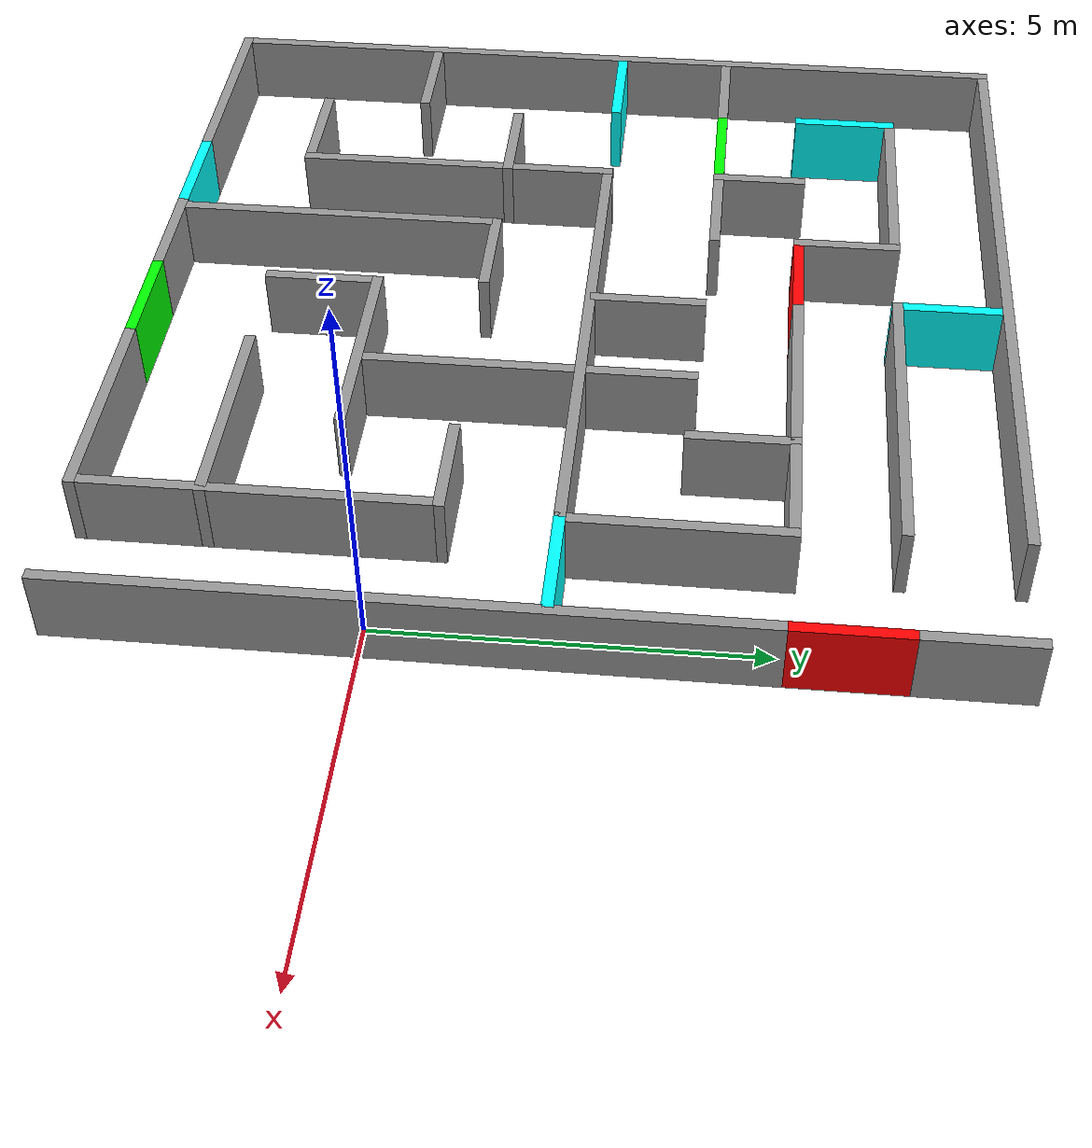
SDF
<?xml version='1.0'?>
<sdf version='1.7'>
  <model name='hacka_labirinth'>
    <pose>-5.64133 2.06828 0 0 -0 0</pose>
    <link name='Wall_10'>
      <collision name='Wall_10_Collision'>
        <geometry>
          <box>
            <size>12 0.15 1</size>
          </box>
        </geometry>
        <pose>0 0 0.5 0 -0 0</pose>
      </collision>
      <visual name='Wall_10_Visual'>
        <pose>0 0 0.5 0 -0 0</pose>
        <geometry>
          <box>
            <size>12 0.15 1</size>
          </box>
        </geometry>
        <material>
          <script>
            <uri>file://media/materials/scripts/gazebo.material</uri>
            <name>Gazebo/Grey</name>
          </script>
          <ambient>0 0 0 1</ambient>
        </material>
        <meta>
          <layer>0</layer>
        </meta>
      </visual>
      <pose>-5.99967 -0.000279 0 0 -0 -1.5708</pose>
    </link>
    <link name='Wall_102'>
      <collision name='Wall_102_Collision'>
        <geometry>
          <box>
            <size>1.35 0.15 1</size>
          </box>
        </geometry>
        <pose>0 0 0.5 0 -0 0</pose>
      </collision>
      <visual name='Wall_102_Visual'>
        <pose>0 0 0.5 0 -0 0</pose>
        <geometry>
          <box>
            <size>1.35 0.15 1</size>
          </box>
        </geometry>
        <material>
          <script>
            <uri>file://media/materials/scripts/gazebo.material</uri>
            <name>Gazebo/Grey</name>
          </script>
          <ambient>0 0 0 1</ambient>
        </material>
        <meta>
          <layer>0</layer>
        </meta>
      </visual>
      <pose>-2.85168 2.46272 0 0 -0 1.5708</pose>
    </link>
    <link name='Wall_104'>
      <collision name='Wall_104_Collision'>
        <geometry>
          <box>
            <size>1.5 0.15 1</size>
          </box>
        </geometry>
        <pose>0 0 0.5 0 -0 0</pose>
      </collision>
      <visual name='Wall_104_Visual'>
        <pose>0 0 0.5 0 -0 0</pose>
        <geometry>
          <box>
            <size>1.5 0.15 1</size>
          </box>
        </geometry>
        <material>
          <script>
            <uri>file://media/materials/scripts/gazebo.material</uri>
            <name>Gazebo/Grey</name>
          </script>
          <ambient>0 0 0 1</ambient>
        </material>
        <meta>
          <layer>0</layer>
        </meta>
      </visual>
      <pose>-5.17467 1.86272 0 0 -0 0</pose>
    </link>
    <link name='Wall_106'>
      <collision name='Wall_106_Collision'>
        <geometry>
          <box>
            <size>1.5 0.15 1</size>
          </box>
        </geometry>
        <pose>0 0 0.5 0 -0 0</pose>
      </collision>
      <visual name='Wall_106_Visual'>
        <pose>0 0 0.5 0 -0 0</pose>
        <geometry>
          <box>
            <size>1.5 0.15 1</size>
          </box>
        </geometry>
        <material>
          <script>
            <uri>file://media/materials/scripts/gazebo.material</uri>
            <name>Gazebo/Grey</name>
          </script>
          <ambient>0 1 0 1</ambient>
        </material>
        <meta>
          <layer>0</layer>
        </meta>
      </visual>
      <pose>-3.67568 1.86272 0 0 -0 0</pose>
    </link>
    <link name='Wall_108'>
      <collision name='Wall_108_Collision'>
        <geometry>
          <box>
            <size>7.25 0.15 1</size>
          </box>
        </geometry>
        <pose>0 0 0.5 0 -0 0</pose>
      </collision>
      <visual name='Wall_108_Visual'>
        <pose>0 0 0.5 0 -0 0</pose>
        <geometry>
          <box>
            <size>7.25 0.15 1</size>
          </box>
        </geometry>
        <material>
          <script>
            <uri>file://media/materials/scripts/gazebo.material</uri>
            <name>Gazebo/Grey</name>
          </script>
          <ambient>0 0 0 1</ambient>
        </material>
        <meta>
          <layer>0</layer>
        </meta>
      </visual>
      <pose>0.843091 0.208721 0 0 -0 0</pose>
    </link>
    <link name='Wall_11'>
      <collision name='Wall_11_Collision'>
        <geometry>
          <box>
            <size>3 0.15 1</size>
          </box>
        </geometry>
        <pose>0 0 0.5 0 -0 0</pose>
      </collision>
      <visual name='Wall_11_Visual'>
        <pose>0 0 0.5 0 -0 0</pose>
        <geometry>
          <box>
            <size>3 0.15 1</size>
          </box>
        </geometry>
        <material>
          <script>
            <uri>file://media/materials/scripts/gazebo.material</uri>
            <name>Gazebo/Grey</name>
          </script>
          <ambient>0 0 0 1</ambient>
        </material>
        <meta>
          <layer>0</layer>
        </meta>
      </visual>
      <pose>-4.57467 -5.92528 0 0 -0 0</pose>
    </link>
    <link name='Wall_110'>
      <collision name='Wall_110_Collision'>
        <geometry>
          <box>
            <size>1.5 0.15 1</size>
          </box>
        </geometry>
        <pose>0 0 0.5 0 -0 0</pose>
      </collision>
      <visual name='Wall_110_Visual'>
        <pose>0 0 0.5 0 -0 0</pose>
        <geometry>
          <box>
            <size>1.5 0.15 1</size>
          </box>
        </geometry>
        <material>
          <script>
            <uri>file://media/materials/scripts/gazebo.material</uri>
            <name>Gazebo/Grey</name>
          </script>
          <ambient>0 0 0 1</ambient>
        </material>
        <meta>
          <layer>0</layer>
        </meta>
      </visual>
      <pose>-2.02668 1.86272 0 0 -0 0</pose>
    </link>
    <link name='Wall_114'>
      <collision name='Wall_114_Collision'>
        <geometry>
          <box>
            <size>1.6 0.15 1</size>
          </box>
        </geometry>
        <pose>0 0 0.5 0 -0 0</pose>
      </collision>
      <visual name='Wall_114_Visual'>
        <pose>0 0 0.5 0 -0 0</pose>
        <geometry>
          <box>
            <size>1.6 0.15 1</size>
          </box>
        </geometry>
        <material>
          <script>
            <uri>file://media/materials/scripts/gazebo.material</uri>
            <name>Gazebo/Grey</name>
          </script>
          <ambient>0 0 0 1</ambient>
        </material>
        <meta>
          <layer>0</layer>
        </meta>
      </visual>
      <pose>0.148325 1.00672 0 0 -0 -1.5708</pose>
    </link>
    <link name='Wall_121'>
      <collision name='Wall_121_Collision'>
        <geometry>
          <box>
            <size>1.5 0.15 1</size>
          </box>
        </geometry>
        <pose>0 0 0.5 0 -0 0</pose>
      </collision>
      <visual name='Wall_121_Visual'>
        <pose>0 0 0.5 0 -0 0</pose>
        <geometry>
          <box>
            <size>1.5 0.15 1</size>
          </box>
        </geometry>
        <material>
          <script>
            <uri>file://media/materials/scripts/gazebo.material</uri>
            <name>Gazebo/Grey</name>
          </script>
          <ambient>0 1 1 1</ambient>
        </material>
        <meta>
          <layer>0</layer>
        </meta>
      </visual>
      <pose>5.21232 0.208721 0 0 -0 0</pose>
    </link>
    <link name='Wall_13'>
      <collision name='Wall_13_Collision'>
        <geometry>
          <box>
            <size>10.5 0.15 1</size>
          </box>
        </geometry>
        <pose>0 0 0.5 0 -0 0</pose>
      </collision>
      <visual name='Wall_13_Visual'>
        <pose>0 0 0.5 0 -0 0</pose>
        <geometry>
          <box>
            <size>10.5 0.15 1</size>
          </box>
        </geometry>
        <material>
          <script>
            <uri>file://media/materials/scripts/gazebo.material</uri>
            <name>Gazebo/Grey</name>
          </script>
          <ambient>0 0 0 1</ambient>
        </material>
        <meta>
          <layer>0</layer>
        </meta>
      </visual>
      <pose>-0.824675 5.92472 0 0 -0 0</pose>
    </link>
    <link name='Wall_136'>
      <collision name='Wall_136_Collision'>
        <geometry>
          <box>
            <size>3 0.15 1</size>
          </box>
        </geometry>
        <pose>0 0 0.5 0 -0 0</pose>
      </collision>
      <visual name='Wall_136_Visual'>
        <pose>0 0 0.5 0 -0 0</pose>
        <geometry>
          <box>
            <size>3 0.15 1</size>
          </box>
        </geometry>
        <material>
          <script>
            <uri>file://media/materials/scripts/gazebo.material</uri>
            <name>Gazebo/Grey</name>
          </script>
          <ambient>0 0 0 1</ambient>
        </material>
        <meta>
          <layer>0</layer>
        </meta>
      </visual>
      <pose>4.47332 1.64072 0 0 -0 1.5708</pose>
    </link>
    <link name='Wall_138'>
      <collision name='Wall_138_Collision'>
        <geometry>
          <box>
            <size>1.5 0.15 1</size>
          </box>
        </geometry>
        <pose>0 0 0.5 0 -0 0</pose>
      </collision>
      <visual name='Wall_138_Visual'>
        <pose>0 0 0.5 0 -0 0</pose>
        <geometry>
          <box>
            <size>1.5 0.15 1</size>
          </box>
        </geometry>
        <material>
          <script>
            <uri>file://media/materials/scripts/gazebo.material</uri>
            <name>Gazebo/Grey</name>
          </script>
          <ambient>0 0 0 1</ambient>
        </material>
        <meta>
          <layer>0</layer>
        </meta>
      </visual>
      <pose>2.84932 2.39072 0 0 -0 -1.5708</pose>
    </link>
    <link name='Wall_140'>
      <collision name='Wall_140_Collision'>
        <geometry>
          <box>
            <size>1.5 0.15 1</size>
          </box>
        </geometry>
        <pose>0 0 0.5 0 -0 0</pose>
      </collision>
      <visual name='Wall_140_Visual'>
        <pose>0 0 0.5 0 -0 0</pose>
        <geometry>
          <box>
            <size>1.5 0.15 1</size>
          </box>
        </geometry>
        <material>
          <script>
            <uri>file://media/materials/scripts/gazebo.material</uri>
            <name>Gazebo/Grey</name>
          </script>
          <ambient>0 0 0 1</ambient>
        </material>
        <meta>
          <layer>0</layer>
        </meta>
      </visual>
      <pose>3.65033 3.06572 0 0 -0 0</pose>
    </link>
    <link name='Wall_142'>
      <collision name='Wall_142_Collision'>
        <geometry>
          <box>
            <size>1.5 0.15 1</size>
          </box>
        </geometry>
        <pose>0 0 0.5 0 -0 0</pose>
      </collision>
      <visual name='Wall_142_Visual'>
        <pose>0 0 0.5 0 -0 0</pose>
        <geometry>
          <box>
            <size>1.5 0.15 1</size>
          </box>
        </geometry>
        <material>
          <script>
            <uri>file://media/materials/scripts/gazebo.material</uri>
            <name>Gazebo/Grey</name>
          </script>
          <ambient>0 0 0 1</ambient>
        </material>
        <meta>
          <layer>0</layer>
        </meta>
      </visual>
      <pose>1.69633 1.01672 0 0 -0 -1.5708</pose>
    </link>
    <link name='Wall_144'>
      <collision name='Wall_144_Collision'>
        <geometry>
          <box>
            <size>2.75 0.15 1</size>
          </box>
        </geometry>
        <pose>0 0 0.5 0 -0 0</pose>
      </collision>
      <visual name='Wall_144_Visual'>
        <pose>0 0 0.5 0 -0 0</pose>
        <geometry>
          <box>
            <size>2.75 0.15 1</size>
          </box>
        </geometry>
        <material>
          <script>
            <uri>file://media/materials/scripts/gazebo.material</uri>
            <name>Gazebo/Grey</name>
          </script>
          <ambient>0 0 0 1</ambient>
        </material>
        <meta>
          <layer>0</layer>
        </meta>
      </visual>
      <pose>1.44932 3.06572 0 0 -0 0</pose>
    </link>
    <link name='Wall_146'>
      <collision name='Wall_146_Collision'>
        <geometry>
          <box>
            <size>1.5 0.15 1</size>
          </box>
        </geometry>
        <pose>0 0 0.5 0 -0 0</pose>
      </collision>
      <visual name='Wall_146_Visual'>
        <pose>0 0 0.5 0 -0 0</pose>
        <geometry>
          <box>
            <size>1.5 0.15 1</size>
          </box>
        </geometry>
        <material>
          <script>
            <uri>file://media/materials/scripts/gazebo.material</uri>
            <name>Gazebo/Grey</name>
          </script>
          <ambient>1 0 0 1</ambient>
        </material>
        <meta>
          <layer>0</layer>
        </meta>
      </visual>
      <pose>-0.672675 3.06572 0 0 -0 0</pose>
    </link>
    <link name='Wall_148'>
      <collision name='Wall_148_Collision'>
        <geometry>
          <box>
            <size>1.5 0.15 1</size>
          </box>
        </geometry>
        <pose>0 0 0.5 0 -0 0</pose>
      </collision>
      <visual name='Wall_148_Visual'>
        <pose>0 0 0.5 0 -0 0</pose>
        <geometry>
          <box>
            <size>1.5 0.15 1</size>
          </box>
        </geometry>
        <material>
          <script>
            <uri>file://media/materials/scripts/gazebo.material</uri>
            <name>Gazebo/Grey</name>
          </script>
          <ambient>0 0 0 1</ambient>
        </material>
        <meta>
          <layer>0</layer>
        </meta>
      </visual>
      <pose>-1.34668 3.74072 0 0 -0 1.5708</pose>
    </link>
    <link name='Wall_150'>
      <collision name='Wall_150_Collision'>
        <geometry>
          <box>
            <size>3 0.15 1</size>
          </box>
        </geometry>
        <pose>0 0 0.5 0 -0 0</pose>
      </collision>
      <visual name='Wall_150_Visual'>
        <pose>0 0 0.5 0 -0 0</pose>
        <geometry>
          <box>
            <size>3 0.15 1</size>
          </box>
        </geometry>
        <material>
          <script>
            <uri>file://media/materials/scripts/gazebo.material</uri>
            <name>Gazebo/Grey</name>
          </script>
          <ambient>0 0 0 1</ambient>
        </material>
        <meta>
          <layer>0</layer>
        </meta>
      </visual>
      <pose>-2.88967 4.41572 0 0 -0 3.14159</pose>
    </link>
    <link name='Wall_154'>
      <collision name='Wall_154_Collision'>
        <geometry>
          <box>
            <size>1.5 0.15 1</size>
          </box>
        </geometry>
        <pose>0 0 0.5 0 -0 0</pose>
      </collision>
      <visual name='Wall_154_Visual'>
        <pose>0 0 0.5 0 -0 0</pose>
        <geometry>
          <box>
            <size>1.5 0.15 1</size>
          </box>
        </geometry>
        <material>
          <script>
            <uri>file://media/materials/scripts/gazebo.material</uri>
            <name>Gazebo/Grey</name>
          </script>
          <ambient>0 1 1 1</ambient>
        </material>
        <meta>
          <layer>0</layer>
        </meta>
      </visual>
      <pose>-4.45367 3.74072 0 0 -0 -1.5708</pose>
    </link>
    <link name='Wall_158'>
      <collision name='Wall_158_Collision'>
        <geometry>
          <box>
            <size>4.5 0.15 1</size>
          </box>
        </geometry>
        <pose>0 0 0.5 0 -0 0</pose>
      </collision>
      <visual name='Wall_158_Visual'>
        <pose>0 0 0.5 0 -0 0</pose>
        <geometry>
          <box>
            <size>4.5 0.15 1</size>
          </box>
        </geometry>
        <material>
          <script>
            <uri>file://media/materials/scripts/gazebo.material</uri>
            <name>Gazebo/Grey</name>
          </script>
          <ambient>0 0 0 1</ambient>
        </material>
        <meta>
          <layer>0</layer>
        </meta>
      </visual>
      <pose>4.34933 -3.60028 0 0 -0 -1.5708</pose>
    </link>
    <link name='Wall_160'>
      <collision name='Wall_160_Collision'>
        <geometry>
          <box>
            <size>3 0.15 1</size>
          </box>
        </geometry>
        <pose>0 0 0.5 0 -0 0</pose>
      </collision>
      <visual name='Wall_160_Visual'>
        <pose>0 0 0.5 0 -0 0</pose>
        <geometry>
          <box>
            <size>3 0.15 1</size>
          </box>
        </geometry>
        <material>
          <script>
            <uri>file://media/materials/scripts/gazebo.material</uri>
            <name>Gazebo/Grey</name>
          </script>
          <ambient>0 0 0 1</ambient>
        </material>
        <meta>
          <layer>0</layer>
        </meta>
      </visual>
      <pose>2.92433 -4.27628 0 0 -0 3.14159</pose>
    </link>
    <link name='Wall_162'>
      <collision name='Wall_162_Collision'>
        <geometry>
          <box>
            <size>4.5 0.15 1</size>
          </box>
        </geometry>
        <pose>0 0 0.5 0 -0 0</pose>
      </collision>
      <visual name='Wall_162_Visual'>
        <pose>0 0 0.5 0 -0 0</pose>
        <geometry>
          <box>
            <size>4.5 0.15 1</size>
          </box>
        </geometry>
        <material>
          <script>
            <uri>file://media/materials/scripts/gazebo.material</uri>
            <name>Gazebo/Grey</name>
          </script>
          <ambient>0 0 0 1</ambient>
        </material>
        <meta>
          <layer>0</layer>
        </meta>
      </visual>
      <pose>-1.44467 -3.60128 0 0 -0 1.5708</pose>
    </link>
    <link name='Wall_164'>
      <collision name='Wall_164_Collision'>
        <geometry>
          <box>
            <size>1.5 0.15 1</size>
          </box>
        </geometry>
        <pose>0 0 0.5 0 -0 0</pose>
      </collision>
      <visual name='Wall_164_Visual'>
        <pose>0 0 0.5 0 -0 0</pose>
        <geometry>
          <box>
            <size>1.5 0.15 1</size>
          </box>
        </geometry>
        <material>
          <script>
            <uri>file://media/materials/scripts/gazebo.material</uri>
            <name>Gazebo/Grey</name>
          </script>
          <ambient>0 0 0 1</ambient>
        </material>
        <meta>
          <layer>0</layer>
        </meta>
      </visual>
      <pose>-0.769675 -1.29528 0 0 -0 0</pose>
    </link>
    <link name='Wall_166'>
      <collision name='Wall_166_Collision'>
        <geometry>
          <box>
            <size>1.5 0.15 1</size>
          </box>
        </geometry>
        <pose>0 0 0.5 0 -0 0</pose>
      </collision>
      <visual name='Wall_166_Visual'>
        <pose>0 0 0.5 0 -0 0</pose>
        <geometry>
          <box>
            <size>1.5 0.15 1</size>
          </box>
        </geometry>
        <material>
          <script>
            <uri>file://media/materials/scripts/gazebo.material</uri>
            <name>Gazebo/Grey</name>
          </script>
          <ambient>0 0 0 1</ambient>
        </material>
        <meta>
          <layer>0</layer>
        </meta>
      </visual>
      <pose>3.67433 -1.29128 0 0 -0 3.14159</pose>
    </link>
    <link name='Wall_168'>
      <collision name='Wall_168_Collision'>
        <geometry>
          <box>
            <size>1.5 0.15 1</size>
          </box>
        </geometry>
        <pose>0 0 0.5 0 -0 0</pose>
      </collision>
      <visual name='Wall_168_Visual'>
        <pose>0 0 0.5 0 -0 0</pose>
        <geometry>
          <box>
            <size>1.5 0.15 1</size>
          </box>
        </geometry>
        <material>
          <script>
            <uri>file://media/materials/scripts/gazebo.material</uri>
            <name>Gazebo/Grey</name>
          </script>
          <ambient>0 0 0 1</ambient>
        </material>
        <meta>
          <layer>0</layer>
        </meta>
      </visual>
      <pose>0.059325 -3.60252 0 0 -0 -1.5708</pose>
    </link>
    <link name='Wall_170'>
      <collision name='Wall_170_Collision'>
        <geometry>
          <box>
            <size>3 0.15 1</size>
          </box>
        </geometry>
        <pose>0 0 0.5 0 -0 0</pose>
      </collision>
      <visual name='Wall_170_Visual'>
        <pose>0 0 0.5 0 -0 0</pose>
        <geometry>
          <box>
            <size>3 0.15 1</size>
          </box>
        </geometry>
        <material>
          <script>
            <uri>file://media/materials/scripts/gazebo.material</uri>
            <name>Gazebo/Grey</name>
          </script>
          <ambient>0 0 0 1</ambient>
        </material>
        <meta>
          <layer>0</layer>
        </meta>
      </visual>
      <pose>1.48432 -2.77828 0 0 -0 0</pose>
    </link>
    <link name='Wall_172'>
      <collision name='Wall_172_Collision'>
        <geometry>
          <box>
            <size>3.05 0.15 1</size>
          </box>
        </geometry>
        <pose>0 0 0.5 0 -0 0</pose>
      </collision>
      <visual name='Wall_172_Visual'>
        <pose>0 0 0.5 0 -0 0</pose>
        <geometry>
          <box>
            <size>3.05 0.15 1</size>
          </box>
        </geometry>
        <material>
          <script>
            <uri>file://media/materials/scripts/gazebo.material</uri>
            <name>Gazebo/Grey</name>
          </script>
          <ambient>0 0 0 1</ambient>
        </material>
        <meta>
          <layer>0</layer>
        </meta>
      </visual>
      <pose>1.69633 -1.19428 0 0 -0 1.5708</pose>
    </link>
    <link name='Wall_20'>
      <collision name='Wall_20_Collision'>
        <geometry>
          <box>
            <size>4.5 0.15 1</size>
          </box>
        </geometry>
        <pose>0 0 0.5 0 -0 0</pose>
      </collision>
      <visual name='Wall_20_Visual'>
        <pose>0 0 0.5 0 -0 0</pose>
        <geometry>
          <box>
            <size>4.5 0.15 1</size>
          </box>
        </geometry>
        <material>
          <script>
            <uri>file://media/materials/scripts/gazebo.material</uri>
            <name>Gazebo/Grey</name>
          </script>
          <ambient>0 0 0 1</ambient>
        </material>
        <meta>
          <layer>0</layer>
        </meta>
      </visual>
      <pose>2.15733 4.42372 0 0 -0 3.14159</pose>
    </link>
    <link name='Wall_21'>
      <collision name='Wall_21_Collision'>
        <geometry>
          <box>
            <size>1.5003 0.15 1</size>
          </box>
        </geometry>
        <pose>0 0 0.5 0 -0 0</pose>
      </collision>
      <visual name='Wall_21_Visual'>
        <pose>0 0 0.5 0 -0 0</pose>
        <geometry>
          <box>
            <size>1.5003 0.15 1</size>
          </box>
        </geometry>
        <material>
          <script>
            <uri>file://media/materials/scripts/gazebo.material</uri>
            <name>Gazebo/Grey</name>
          </script>
          <ambient>0 1 1 1</ambient>
        </material>
        <meta>
          <layer>0</layer>
        </meta>
      </visual>
      <pose>-0.017675 5.09872 0 0 -0 1.5708</pose>
    </link>
    <link name='Wall_29'>
      <collision name='Wall_29_Collision'>
        <geometry>
          <box>
            <size>1.5 0.15 1</size>
          </box>
        </geometry>
        <pose>0 0 0.5 0 -0 0</pose>
      </collision>
      <visual name='Wall_29_Visual'>
        <pose>0 0 0.5 0 -0 0</pose>
        <geometry>
          <box>
            <size>1.5 0.15 1</size>
          </box>
        </geometry>
        <material>
          <script>
            <uri>file://media/materials/scripts/gazebo.material</uri>
            <name>Gazebo/Grey</name>
          </script>
          <ambient>0 0 0 1</ambient>
        </material>
        <meta>
          <layer>0</layer>
        </meta>
      </visual>
      <pose>5.99967 5.25028 0 0 -0 -1.5708</pose>
    </link>
    <link name='Wall_45'>
      <collision name='Wall_45_Collision'>
        <geometry>
          <box>
            <size>1.5 0.15 1</size>
          </box>
        </geometry>
        <pose>0 0 0.5 0 -0 0</pose>
      </collision>
      <visual name='Wall_45_Visual'>
        <pose>0 0 0.5 0 -0 0</pose>
        <geometry>
          <box>
            <size>1.5 0.15 1</size>
          </box>
        </geometry>
        <material>
          <script>
            <uri>file://media/materials/scripts/gazebo.material</uri>
            <name>Gazebo/Grey</name>
          </script>
          <ambient>0 1 1 1</ambient>
        </material>
        <meta>
          <layer>0</layer>
        </meta>
      </visual>
      <pose>-2.32667 -5.92528 0 0 -0 0</pose>
    </link>
    <link name='Wall_49'>
      <collision name='Wall_49_Collision'>
        <geometry>
          <box>
            <size>1.5 0.15 1</size>
          </box>
        </geometry>
        <pose>0 0 0.5 0 -0 0</pose>
      </collision>
      <visual name='Wall_49_Visual'>
        <pose>0 0 0.5 0 -0 0</pose>
        <geometry>
          <box>
            <size>1.5 0.15 1</size>
          </box>
        </geometry>
        <material>
          <script>
            <uri>file://media/materials/scripts/gazebo.material</uri>
            <name>Gazebo/Grey</name>
          </script>
          <ambient>0 0 0 1</ambient>
        </material>
        <meta>
          <layer>0</layer>
        </meta>
      </visual>
      <pose>-0.826675 -5.92528 0 0 -0 0</pose>
    </link>
    <link name='Wall_51'>
      <collision name='Wall_51_Collision'>
        <geometry>
          <box>
            <size>1.5 0.15 1</size>
          </box>
        </geometry>
        <pose>0 0 0.5 0 -0 0</pose>
      </collision>
      <visual name='Wall_51_Visual'>
        <pose>0 0 0.5 0 -0 0</pose>
        <geometry>
          <box>
            <size>1.5 0.15 1</size>
          </box>
        </geometry>
        <material>
          <script>
            <uri>file://media/materials/scripts/gazebo.material</uri>
            <name>Gazebo/Grey</name>
          </script>
          <ambient>0 1 0 1</ambient>
        </material>
        <meta>
          <layer>0</layer>
        </meta>
      </visual>
      <pose>0.674325 -5.92528 0 0 -0 0</pose>
    </link>
    <link name='Wall_59'>
      <collision name='Wall_59_Collision'>
        <geometry>
          <box>
            <size>3 0.15 1</size>
          </box>
        </geometry>
        <pose>0 0 0.5 0 -0 0</pose>
      </collision>
      <visual name='Wall_59_Visual'>
        <pose>0 0 0.5 0 -0 0</pose>
        <geometry>
          <box>
            <size>3 0.15 1</size>
          </box>
        </geometry>
        <material>
          <script>
            <uri>file://media/materials/scripts/gazebo.material</uri>
            <name>Gazebo/Grey</name>
          </script>
          <ambient>0 0 0 1</ambient>
        </material>
        <meta>
          <layer>0</layer>
        </meta>
      </visual>
      <pose>2.92433 -5.92528 0 0 -0 0</pose>
    </link>
    <link name='Wall_69'>
      <collision name='Wall_69_Collision'>
        <geometry>
          <box>
            <size>1.5 0.15 1</size>
          </box>
        </geometry>
        <pose>0 0 0.5 0 -0 0</pose>
      </collision>
      <visual name='Wall_69_Visual'>
        <pose>0 0 0.5 0 -0 0</pose>
        <geometry>
          <box>
            <size>1.5 0.15 1</size>
          </box>
        </geometry>
        <material>
          <script>
            <uri>file://media/materials/scripts/gazebo.material</uri>
            <name>Gazebo/Grey</name>
          </script>
          <ambient>1 0 0 1</ambient>
        </material>
        <meta>
          <layer>0</layer>
        </meta>
      </visual>
      <pose>5.99932 3.74972 0 0 -0 -1.5708</pose>
    </link>
    <link name='Wall_71'>
      <collision name='Wall_71_Collision'>
        <geometry>
          <box>
            <size>9 0.15 1</size>
          </box>
        </geometry>
        <pose>0 0 0.5 0 -0 0</pose>
      </collision>
      <visual name='Wall_71_Visual'>
        <pose>0 0 0.5 0 -0 0</pose>
        <geometry>
          <box>
            <size>9 0.15 1</size>
          </box>
        </geometry>
        <material>
          <script>
            <uri>file://media/materials/scripts/gazebo.material</uri>
            <name>Gazebo/Grey</name>
          </script>
          <ambient>0 0 0 1</ambient>
        </material>
        <meta>
          <layer>0</layer>
        </meta>
      </visual>
      <pose>5.99932 -1.50028 0 0 -0 -1.5708</pose>
    </link>
    <link name='Wall_85'>
      <collision name='Wall_85_Collision'>
        <geometry>
          <box>
            <size>1.5 0.15 1</size>
          </box>
        </geometry>
        <pose>0 0 0.5 0 -0 0</pose>
      </collision>
      <visual name='Wall_85_Visual'>
        <pose>0 0 0.5 0 -0 0</pose>
        <geometry>
          <box>
            <size>1.5 0.15 1</size>
          </box>
        </geometry>
        <material>
          <script>
            <uri>file://media/materials/scripts/gazebo.material</uri>
            <name>Gazebo/Grey</name>
          </script>
          <ambient>0 0 0 1</ambient>
        </material>
        <meta>
          <layer>0</layer>
        </meta>
      </visual>
      <pose>-5.17467 -2.77928 0 0 -0 0</pose>
    </link>
    <link name='Wall_87'>
      <collision name='Wall_87_Collision'>
        <geometry>
          <box>
            <size>3 0.15 1</size>
          </box>
        </geometry>
        <pose>0 0 0.5 0 -0 0</pose>
      </collision>
      <visual name='Wall_87_Visual'>
        <pose>0 0 0.5 0 -0 0</pose>
        <geometry>
          <box>
            <size>3 0.15 1</size>
          </box>
        </geometry>
        <material>
          <script>
            <uri>file://media/materials/scripts/gazebo.material</uri>
            <name>Gazebo/Grey</name>
          </script>
          <ambient>0 0 0 1</ambient>
        </material>
        <meta>
          <layer>0</layer>
        </meta>
      </visual>
      <pose>-2.84877 -2.86228 0 0 -0 1.5708</pose>
    </link>
    <link name='Wall_89'>
      <collision name='Wall_89_Collision'>
        <geometry>
          <box>
            <size>1.5 0.15 1</size>
          </box>
        </geometry>
        <pose>0 0 0.5 0 -0 0</pose>
      </collision>
      <visual name='Wall_89_Visual'>
        <pose>0 0 0.5 0 -0 0</pose>
        <geometry>
          <box>
            <size>1.5 0.15 1</size>
          </box>
        </geometry>
        <material>
          <script>
            <uri>file://media/materials/scripts/gazebo.material</uri>
            <name>Gazebo/Grey</name>
          </script>
          <ambient>0 0 0 1</ambient>
        </material>
        <meta>
          <layer>0</layer>
        </meta>
      </visual>
      <pose>-3.52367 -1.28928 0 0 -0 3.14159</pose>
    </link>
    <link name='Wall_91'>
      <collision name='Wall_91_Collision'>
        <geometry>
          <box>
            <size>1.5 0.15 1</size>
          </box>
        </geometry>
        <pose>0 0 0.5 0 -0 0</pose>
      </collision>
      <visual name='Wall_91_Visual'>
        <pose>0 0 0.5 0 -0 0</pose>
        <geometry>
          <box>
            <size>1.5 0.15 1</size>
          </box>
        </geometry>
        <material>
          <script>
            <uri>file://media/materials/scripts/gazebo.material</uri>
            <name>Gazebo/Grey</name>
          </script>
          <ambient>0 0 0 1</ambient>
        </material>
        <meta>
          <layer>0</layer>
        </meta>
      </visual>
      <pose>-3.67422 -4.28719 0 0 -0 0</pose>
    </link>
    <link name='Wall_93'>
      <collision name='Wall_93_Collision'>
        <geometry>
          <box>
            <size>1.5 0.15 1</size>
          </box>
        </geometry>
        <pose>0 0 0.5 0 -0 0</pose>
      </collision>
      <visual name='Wall_93_Visual'>
        <pose>0 0 0.5 0 -0 0</pose>
        <geometry>
          <box>
            <size>1.5 0.15 1</size>
          </box>
        </geometry>
        <material>
          <script>
            <uri>file://media/materials/scripts/gazebo.material</uri>
            <name>Gazebo/Grey</name>
          </script>
          <ambient>0 0 0 1</ambient>
        </material>
        <meta>
          <layer>0</layer>
        </meta>
      </visual>
      <pose>-2.84868 -0.466279 0 0 -0 1.5708</pose>
    </link>
    <link name='Wall_96'>
      <collision name='Wall_96_Collision'>
        <geometry>
          <box>
            <size>1.5 0.15 1</size>
          </box>
        </geometry>
        <pose>0 0 0.5 0 -0 0</pose>
      </collision>
      <visual name='Wall_96_Visual'>
        <pose>0 0 0.5 0 -0 0</pose>
        <geometry>
          <box>
            <size>1.5 0.15 1</size>
          </box>
        </geometry>
        <material>
          <script>
            <uri>file://media/materials/scripts/gazebo.material</uri>
            <name>Gazebo/Grey</name>
          </script>
          <ambient>0 1 1 1</ambient>
        </material>
        <meta>
          <layer>0</layer>
        </meta>
      </visual>
      <pose>-5.17467 0.211721 0 0 -0 3.14159</pose>
    </link>
    <static>1</static>
  </model>
</sdf>
